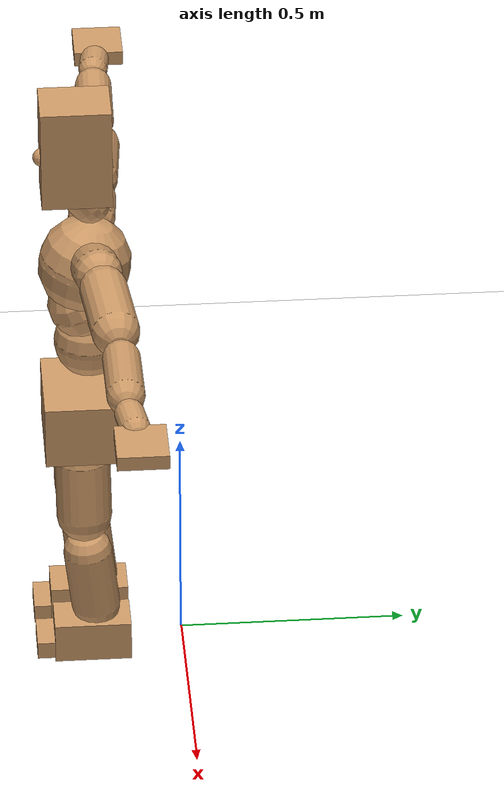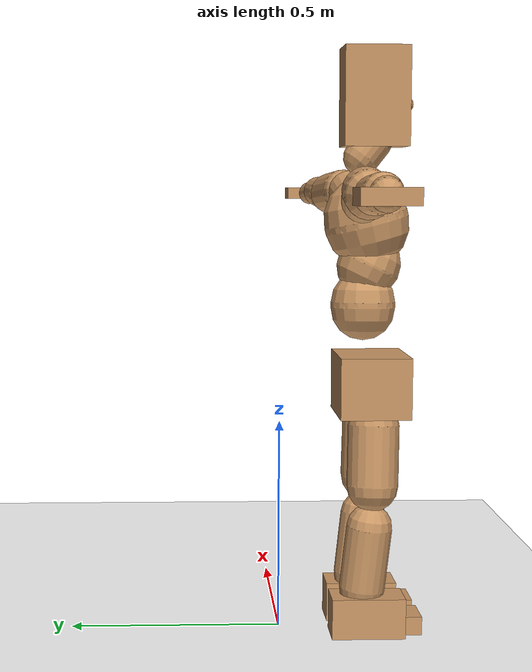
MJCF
<mujoco model="humanoid">
  <option integrator="implicitfast" />

  <visual>
    <global offwidth="1280" offheight="960" />
    <headlight active="1" ambient="0.34 0.34 0.34" diffuse="0.5 0.5 0.5" />
  </visual>

  <default>
    <joint damping="2" stiffness="2" armature="0.01" limited="true" solimplimit="0 .99 .01" />
    <geom condim="1" friction="0.7 0.005 0.0001" solimp=".99 .99 .003" solref="0.015 1" margin="0.001" rgba="0.8 0.6 .4 1" />
    <default class="smplcontact">
      <geom condim="3" friction="1. 0.005 0.0001" solref="0.015 1" solimp="0.98 0.98 0.001" priority="1" />
    </default>
    <default class="stiff_medium">
      <joint stiffness="10" />
    </default>
    <default class="stiff_medium_higher">
      <joint stiffness="50" />
    </default>
    <default class="stiff_high">
      <joint stiffness="100" />
    </default>
  </default>

  <asset>
    <texture type="skybox" builtin="gradient" rgb1="0.99 0.99 0.99" rgb2="0.608 0.828 0.892" width="100" />
    <texture builtin="flat" height="1278" mark="cross" markrgb="1 1 1" name="texgeom" random="0.01" rgb1="0.8 0.6 0.4" rgb2="0.8 0.6 0.4" type="cube" width="127" />
    <texture name="texplane" type="2d" builtin="checker" markrgb="1 1 1" rgb1="0.756 0.772 0.76" rgb2="0.6 0.6 0.6" width="100" height="100" />
    <material name="MatPlane" reflectance="0.5" texture="texplane" texrepeat="1 1" texuniform="true" />
    <material name="geom" texture="texgeom" texuniform="true" />
  </asset>

  <worldbody>
    <light name="tracking_light" pos="0 0 7" dir="0 0 -1" directional="true" cutoff="100" exponent="1" diffuse="1 1 1" specular="0.1 0.1 0.1" mode="trackcom" />
    <camera name="back" pos="0 3 2.4" xyaxes="-1 0 0 0 -1 2" mode="trackcom" />
    <camera name="side" pos="-3 0 2.4" xyaxes="0 -1 0 1 0 2" mode="trackcom" />
    <camera name="front_side" pos="-2.8 -2.8 0.8" xyaxes="0.5 -0.5 0 0.1 0.1 1" mode="trackcom" />
    <geom condim="3" name="floor" pos="0 0 0" rgba="1 1 1 1" size="100 100 .2" type="plane" material="MatPlane" />
    <body name="Pelvis" pos="-0.0018 -0.2233 0.603363" euler="90 0 0">
      <site name="Pelvis" size="0.01" />
      <freejoint name="Pelvis" />
      <geom type="box" pos="-0.0000 -0.0121 -0.0055" size="0.1069 0.0722 0.083" quat="1.0000 0.0000 0.0000 0.0000" density="3165.830099" name="Pelvis" />
      <body name="L_Hip" pos="0.0434375 -0.057125 -0.00425">
        <joint name="L_Hip_x" type="hinge" pos="0 0 0" axis="1 0 0" stiffness="4.687407500000001" range="-160.0 22.92" class="stiff_medium" damping="5.764325230195987" armature="0.003150516248715215"/>
        <joint name="L_Hip_y" type="hinge" pos="0 0 0" axis="0 1 0" stiffness="4.7267779545454545" range="-70.0 70.0" class="stiff_medium" damping="5.2258051596118325" armature="0.005777516910851337"/>
        <joint name="L_Hip_z" type="hinge" pos="0 0 0" axis="0 0 1" stiffness="4.7183838636363635" range="-28.65 90.0" class="stiff_medium" damping="3.852980787733686" armature="0.003146302077085308"/>
        <geom type="capsule" density="2040.816327" fromto="0.0043125 -0.046875 -0.0005625 0.017125 -0.187625 -0.00225" size="0.0615" name="L_Hip" />
        <body name="L_Knee" pos="0.0214375 -0.2345 -0.0028125">
          <joint name="L_Knee_x" type="hinge" pos="0 0 0" axis="1 0 0" range="-5.16 171.89" damping="3.32034463793058" armature="0.003468205500974937" stiffness="0.9933711136363637"/>
          <joint name="L_Knee_y" type="hinge" pos="0 0 0" axis="0 1 0" range="-4.58 6.88" damping="4.394208641781007" armature="0.006327520325715421" stiffness="0.953625422832981"/>
          <joint name="L_Knee_z" type="hinge" pos="0 0 0" axis="0 0 1" range="-6.88 4.58" damping="3.318626119768315" armature="0.0034456063533856774" stiffness="0.9988517071881606"/>
          <geom type="capsule" density="1234.567901" fromto="-0.0016875 -0.04975 -0.0054375 -0.0068125 -0.199 -0.021875" size="0.0541" name="L_Knee" />
          <body name="L_Ankle" pos="-0.0085 -0.24875 -0.0273125">
            <joint name="L_Ankle_x" type="hinge" pos="0 0 0" axis="1 0 0" range="-45.84 45.84" class="stiff_medium" damping="3.6717736084900636" armature="0.005991965080890731" stiffness="6.25"/>
            <joint name="L_Ankle_y" type="hinge" pos="0 0 0" axis="0 1 0" range="-74.48 22.92" class="stiff_medium" damping="1.858589102984691" armature="0.006141072806637225" stiffness="6.25"/>
            <joint name="L_Ankle_z" type="hinge" pos="0 0 0" axis="0 0 1" range="-4.58 4.58" class="stiff_medium" damping="4.001717943795479" armature="0.007117220667419875" stiffness="6.25"/>
            <geom type="box" pos="0.0145625 -0.0149375 0.015125" size="0.0483 0.0464 0.085" quat="1.0000 0.0000 0.0000 0.0000" density="449.071558" name="L_Ankle" class="smplcontact" />
            <body name="L_Toe" pos="0.0165 -0.034875 0.0745625">
              <joint name="L_Toe_x" type="hinge" pos="0 0 0" axis="1 0 0" range="-91.67 22.92" armature="0.007683229914737211" damping="1.3859319891987134" stiffness="1.25"/>
              <joint name="L_Toe_y" type="hinge" pos="0 0 0" axis="0 1 0" range="-4.58 4.58" armature="0.008367648440754674" damping="1.446344395428927" stiffness="1.25"/>
              <joint name="L_Toe_z" type="hinge" pos="0 0 0" axis="0 0 1" range="-4.58 4.58" armature="0.009751505861704394" damping="1.5613700603720115" stiffness="1.25"/>
              <geom type="box" pos="-0.001875 0.0034375 0.0155" size="0.0478 0.02 0.0496" quat="1.0000 0.0000 0.0000 0.0000" density="423.206892" name="L_Toe" class="smplcontact" />
            </body>
          </body>
        </body>
      </body>
      <body name="R_Hip" pos="-0.0423125 -0.0565625 -0.0026875">
        <joint name="R_Hip_x" type="hinge" pos="0 0 0" axis="1 0 0" stiffness="4.687407500000001" range="-160.0 22.92" class="stiff_medium" damping="5.764325230195987" armature="0.003150516248715215"/>
        <joint name="R_Hip_y" type="hinge" pos="0 0 0" axis="0 1 0" stiffness="4.7267779545454545" range="-70.0 70.0" class="stiff_medium" damping="5.2258051596118325" armature="0.005777516910851337"/>
        <joint name="R_Hip_z" type="hinge" pos="0 0 0" axis="0 0 1" stiffness="4.7183838636363635" range="-90.0 28.65" class="stiff_medium" damping="3.852980787733686" armature="0.003146302077085308"/>
        <geom type="capsule" density="2040.816327" fromto="-0.0048125 -0.0478125 -0.001125 -0.019125 -0.191312 -0.0044375" size="0.0606" name="R_Hip" />
        <body name="R_Knee" pos="-0.0239375 -0.239125 -0.0055625">
          <joint name="R_Knee_x" type="hinge" pos="0 0 0" axis="1 0 0" range="-5.16 171.89" damping="3.32034463793058" armature="0.003468205500974937" stiffness="0.9933711136363637"/>
          <joint name="R_Knee_y" type="hinge" pos="0 0 0" axis="0 1 0" range="-6.88 4.58" damping="4.394208641781007" armature="0.006327520325715421" stiffness="0.953625422832981"/>
          <joint name="R_Knee_z" type="hinge" pos="0 0 0" axis="0 0 1" range="-4.58 6.88" damping="3.318626119768315" armature="0.0034456063533856774" stiffness="0.9988517071881606"/>
          <geom type="capsule" density="1234.567901" fromto="0.002 -0.0498125 -0.0053125 0.007875 -0.199187 -0.021125" size="0.0541" name="R_Knee" />
          <body name="R_Ankle" pos="0.009875 -0.249 -0.0264375">
            <joint name="R_Ankle_x" type="hinge" pos="0 0 0" axis="1 0 0" range="-45.84 45.84" class="stiff_medium" damping="3.6717736084900636" armature="0.005991965080890731" stiffness="6.25"/>
            <joint name="R_Ankle_y" type="hinge" pos="0 0 0" axis="0 1 0" range="-22.92 74.48" class="stiff_medium" damping="1.858589102984691" armature="0.006141072806637225" stiffness="6.25"/>
            <joint name="R_Ankle_z" type="hinge" pos="0 0 0" axis="0 0 1" range="-4.58 4.58" class="stiff_medium" damping="4.001717943795479" armature="0.007117220667419875" stiffness="6.25"/>
            <geom type="box" pos="-0.01325 -0.010875 0.016" size="0.0483 0.0478 0.0865" quat="1.0000 0.0000 0.0000 0.0000" density="434.700981" name="R_Ankle" class="smplcontact" />
            <body name="R_Toe" pos="-0.015875 -0.0300625 0.0770625">
              <joint name="R_Toe_x" type="hinge" pos="0 0 0" axis="1 0 0" range="-91.67 22.92" armature="0.007683229914737211" damping="1.3859319891987134" stiffness="1.25"/>
              <joint name="R_Toe_y" type="hinge" pos="0 0 0" axis="0 1 0" range="-4.58 4.58" armature="0.008367648440754674" damping="1.446344395428927" stiffness="1.25"/>
              <joint name="R_Toe_z" type="hinge" pos="0 0 0" axis="0 0 1" range="-4.58 4.58" armature="0.009751505861704394" damping="1.5613700603720115" stiffness="1.25"/>
              <geom type="box" pos="0.002625 0.0028125 0.0141875" size="0.0479 0.0216 0.0493" quat="1.0000 0.0000 0.0000 0.0000" density="407.384095" name="R_Toe" class="smplcontact" />
            </body>
          </body>
        </body>
      </body>
      <body name="Torso" pos="-0.0025 0.109 -0.0267">
        <joint name="Torso_x" type="hinge" pos="0 0 0" axis="1 0 0" range="-25.78 57.3" class="stiff_medium" damping="15.000000000000007" armature="0.010000000000000009" stiffness="10.0"/>
        <joint name="Torso_y" type="hinge" pos="0 0 0" axis="0 1 0" range="-57.3 57.3" class="stiff_high" damping="20.0" armature="0.010000000000000002" stiffness="100.0"/>
        <joint name="Torso_z" type="hinge" pos="0 0 0" axis="0 0 1" range="-34.38 34.38" class="stiff_high" damping="20.000000000000004" armature="0.010000000000000005" stiffness="100.0"/>
        <geom type="capsule" density="2040.816327" fromto="0.0025 0.0608 0.0005 0.003 0.0743 0.0006" size="0.0769" name="Torso" />
        <body name="Spine" pos="0.0055 0.1352 0.0011">
          <joint name="Spine_x" type="hinge" pos="0 0 0" axis="1 0 0" stiffness="10.0" range="-25.78 57.3" class="stiff_medium" damping="15.000000000000014" armature="0.010000000000000021"/>
          <joint name="Spine_y" type="hinge" pos="0 0 0" axis="0 1 0" stiffness="10.0" range="-57.3 57.3" class="stiff_high" damping="8.0" armature="0.01"/>
          <joint name="Spine_z" type="hinge" pos="0 0 0" axis="0 0 1" stiffness="20.0" range="-34.38 34.38" class="stiff_high" damping="12.000000000000004" armature="0.010000000000000007"/>
          <geom type="capsule" density="2040.816327" fromto="0.0007 0.0238 0.0114 0.0008 0.0291 0.014" size="0.0755" name="Spine" />
          <body name="Chest" pos="0.0015 0.0529 0.0254">
            <joint name="Chest_x" type="hinge" pos="0 0 0" axis="1 0 0" stiffness="10.0" range="-25.78 57.3" class="stiff_medium" damping="15.000000000000007" armature="0.010000000000000009"/>
            <joint name="Chest_y" type="hinge" pos="0 0 0" axis="0 1 0" stiffness="10.0" range="-57.3 57.3" class="stiff_high" damping="8.0" armature="0.010000000000000002"/>
            <joint name="Chest_z" type="hinge" pos="0 0 0" axis="0 0 1" stiffness="20.0" range="-34.38 34.38" class="stiff_high" damping="12.0" armature="0.010000000000000002"/>
            <geom type="capsule" density="2040.816327" fromto="-0.0009 0.0682 -0.0173 -0.001 0.0833 -0.0212" size="0.1002" name="Chest" />
            <body name="Neck" pos="-0.0028 0.2139 -0.0429">
              <joint name="Neck_x" type="hinge" pos="0 0 0" axis="1 0 0" range="-28.65 57.3" class="stiff_medium_higher" damping="10.000000000000004" armature="0.010000000000000009" stiffness="50.0"/>
              <joint name="Neck_y" type="hinge" pos="0 0 0" axis="0 1 0" range="-40.11 40.11" class="stiff_medium_higher" damping="10.0" armature="0.01" stiffness="50.0"/>
              <joint name="Neck_z" type="hinge" pos="0 0 0" axis="0 0 1" range="-40.11 40.11" class="stiff_medium_higher" damping="9.999999999999996" armature="0.009999999999999993" stiffness="50.0"/>
              <geom type="capsule" density="1000" fromto="0.001 0.013 0.0103 0.0041 0.052 0.0411" size="0.0436" name="Neck" />
              <body name="Head" pos="0.0052 0.065 0.0513">
                <joint name="Head_x" type="hinge" pos="0 0 0" axis="1 0 0" range="-28.65 57.3" class="stiff_medium_higher" damping="1.9999999999999973" armature="0.009999999999999974" stiffness="50.0"/>
                <joint name="Head_y" type="hinge" pos="0 0 0" axis="0 1 0" range="-40.11 40.11" class="stiff_medium_higher" damping="1.9999999999999998" armature="0.009999999999999998" stiffness="50.0"/>
                <joint name="Head_z" type="hinge" pos="0 0 0" axis="0 0 1" range="-40.11 40.11" class="stiff_medium_higher" damping="1.9999999999999964" armature="0.009999999999999966" stiffness="50.0"/>
                <geom type="box" pos="-0.0042 0.0876 -0.0116" size="0.0606 0.1154 0.076" quat="1.0000 0.0000 0.0000 0.0000" density="1018.069894" name="Head" />
                <geom type="capsule" name="nose" size="0.02 0.01" pos="0 0.07 0.05" quat="1 0 0 0" mass="0" contype="0" conaffinity="0" />
              </body>
            </body>
            <body name="L_Thorax" pos="0.0788 0.1217 -0.0341">
              <joint name="L_Thorax_x" type="hinge" pos="0 0 0" axis="1 0 0" range="-10.89 4.58" class="stiff_medium_higher" damping="20.000000000000014" armature="0.010000000000000014" stiffness="50.0"/>
              <joint name="L_Thorax_y" type="hinge" pos="0 0 0" axis="0 1 0" range="-28.65 17.19" class="stiff_medium_higher" damping="20.0" armature="0.01" stiffness="50.0"/>
              <joint name="L_Thorax_z" type="hinge" pos="0 0 0" axis="0 0 1" range="-31.51 40.11" class="stiff_medium_higher" damping="19.999999999999996" armature="0.009999999999999998" stiffness="50.0"/>
              <geom type="capsule" density="1000" fromto="0.0182 0.0061 -0.0018 0.0728 0.0244 -0.0071" size="0.0521" name="L_Thorax" />
              <body name="L_Shoulder" pos="0.091 0.0305 -0.0089">
                <joint name="L_Shoulder_x" type="hinge" pos="0 0 0" axis="1 0 0" range="-97.4 97.4" class="stiff_medium" damping="6.000000000000073" armature="0.010000000000000245" stiffness="10.0"/>
                <joint name="L_Shoulder_y" type="hinge" pos="0 0 0" axis="0 1 0" range="-108.86 80.21" class="stiff_medium" damping="5.999999999999999" armature="0.009999999999999998" stiffness="10.0"/>
                <joint name="L_Shoulder_z" type="hinge" pos="0 0 0" axis="0 0 1" range="-97.4 85.94" class="stiff_medium" damping="6.000000000000002" armature="0.010000000000000005" stiffness="10.0"/>
                <geom type="capsule" density="1000" fromto="0.0519 -0.0026 -0.0055 0.2077 -0.0102 -0.022" size="0.0517" name="L_Shoulder" />
                <body name="L_Elbow" pos="0.2596 -0.0128 -0.0275">
                  <joint name="L_Elbow_x" type="hinge" pos="0 0 0" axis="1 0 0" range="-17.19 4.58" damping="4.999999999999972" armature="0.009999999999999886" stiffness="2.0"/>
                  <joint name="L_Elbow_y" type="hinge" pos="0 0 0" axis="0 1 0" range="-180.0 17.19" damping="5.000000000000004" armature="0.010000000000000018" stiffness="2.0"/>
                  <joint name="L_Elbow_z" type="hinge" pos="0 0 0" axis="0 0 1" range="-100.84 4.58" damping="5.0000000000000036" armature="0.010000000000000014" stiffness="2.0"/>
                  <geom type="capsule" density="1000" fromto="0.0498 0.0018 -0.0002 0.1994 0.0072 -0.0009" size="0.0405" name="L_Elbow" />
                  <body name="L_Wrist" pos="0.2492 0.009 -0.0012">
                    <joint name="L_Wrist_x" type="hinge" pos="0 0 0" axis="1 0 0" range="-180.0 22.92" armature="0.009999999999999492" damping="1.9999999999999492" stiffness="2.0"/>
                    <joint name="L_Wrist_y" type="hinge" pos="0 0 0" axis="0 1 0" range="-17.19 17.19" armature="0.010000000000000031" damping="2.000000000000003" stiffness="2.0"/>
                    <joint name="L_Wrist_z" type="hinge" pos="0 0 0" axis="0 0 1" range="-22.92 22.92" armature="0.009999999999999934" damping="1.9999999999999933" stiffness="2.0"/>
                    <geom type="capsule" density="1000" fromto="0.0168 -0.0016 -0.003 0.0672 -0.0065 -0.012" size="0.0318" name="L_Wrist" class="smplcontact" />
                    <body name="L_Hand" pos="0.084 -0.0082 -0.0149">
                      <joint name="L_Hand_x" type="hinge" pos="0 0 0" axis="1 0 0" range="-17.19 17.19" armature="0.009999999999999908" damping="1.9999999999999907" stiffness="2.0"/>
                      <joint name="L_Hand_y" type="hinge" pos="0 0 0" axis="0 1 0" range="-51.57 51.57" armature="0.010000000000000328" damping="2.000000000000033" stiffness="2.0"/>
                      <joint name="L_Hand_z" type="hinge" pos="0 0 0" axis="0 0 1" range="-91.67 91.67" armature="0.010000000000000168" damping="2.000000000000017" stiffness="2.0"/>
                      <geom type="box" pos="0.0493 0.001 -0.0058" size="0.0585 0.0158 0.0538" quat="1.0000 0.0000 0.0000 0.0000" density="400.552564" name="L_Hand" class="smplcontact" />
                    </body>
                  </body>
                </body>
              </body>
            </body>
            <body name="R_Thorax" pos="-0.0818 0.1188 -0.0386">
              <joint name="R_Thorax_x" type="hinge" pos="0 0 0" axis="1 0 0" range="-10.89 4.58" class="stiff_medium_higher" damping="20.000000000000014" armature="0.010000000000000014" stiffness="50.0"/>
              <joint name="R_Thorax_y" type="hinge" pos="0 0 0" axis="0 1 0" range="-17.19 28.65" class="stiff_medium_higher" damping="20.0" armature="0.01" stiffness="50.0"/>
              <joint name="R_Thorax_z" type="hinge" pos="0 0 0" axis="0 0 1" range="-40.11 31.51" class="stiff_medium_higher" damping="19.999999999999996" armature="0.009999999999999998" stiffness="50.0"/>
              <geom type="capsule" density="1000" fromto="-0.0192 0.0065 -0.0018 -0.0768 0.026 -0.0073" size="0.0511" name="R_Thorax" />
              <body name="R_Shoulder" pos="-0.096 0.0326 -0.0091">
                <joint name="R_Shoulder_x" type="hinge" pos="0 0 0" axis="1 0 0" range="-97.4 97.4" class="stiff_medium" damping="6.000000000000073" armature="0.010000000000000245" stiffness="10.0"/>
                <joint name="R_Shoulder_y" type="hinge" pos="0 0 0" axis="0 1 0" range="-80.21 108.86" class="stiff_medium" damping="5.999999999999999" armature="0.009999999999999998" stiffness="10.0"/>
                <joint name="R_Shoulder_z" type="hinge" pos="0 0 0" axis="0 0 1" range="-85.94 97.4" class="stiff_medium" damping="6.000000000000002" armature="0.010000000000000005" stiffness="10.0"/>
                <geom type="capsule" density="1000" fromto="-0.0507 -0.0027 -0.0043 -0.203 -0.0107 -0.0171" size="0.0531" name="R_Shoulder" />
                <body name="R_Elbow" pos="-0.2537 -0.0133 -0.0214">
                  <joint name="R_Elbow_x" type="hinge" pos="0 0 0" axis="1 0 0" range="-17.19 4.58" damping="4.999999999999972" armature="0.009999999999999886" stiffness="2.0"/>
                  <joint name="R_Elbow_y" type="hinge" pos="0 0 0" axis="0 1 0" range="-17.19 180.0" damping="5.000000000000004" armature="0.010000000000000018" stiffness="2.0"/>
                  <joint name="R_Elbow_z" type="hinge" pos="0 0 0" axis="0 0 1" range="-4.58 100.84" damping="5.0000000000000036" armature="0.010000000000000014" stiffness="2.0"/>
                  <geom type="capsule" density="1000" fromto="-0.0511 0.0016 -0.0011 -0.2042 0.0062 -0.0044" size="0.0408" name="R_Elbow" />
                  <body name="R_Wrist" pos="-0.2553 0.0078 -0.0056">
                    <joint name="R_Wrist_x" type="hinge" pos="0 0 0" axis="1 0 0" range="-180.0 22.92" armature="0.009999999999999492" damping="1.9999999999999492" stiffness="2.0"/>
                    <joint name="R_Wrist_y" type="hinge" pos="0 0 0" axis="0 1 0" range="-17.19 17.19" armature="0.010000000000000031" damping="2.000000000000003" stiffness="2.0"/>
                    <joint name="R_Wrist_z" type="hinge" pos="0 0 0" axis="0 0 1" range="-22.92 22.92" armature="0.009999999999999934" damping="1.9999999999999933" stiffness="2.0"/>
                    <geom type="capsule" density="1000" fromto="-0.0169 -0.0012 -0.0021 -0.0677 -0.0049 -0.0083" size="0.0326" name="R_Wrist" class="smplcontact" />
                    <body name="R_Hand" pos="-0.0846 -0.0061 -0.0103">
                      <joint name="R_Hand_x" type="hinge" pos="0 0 0" axis="1 0 0" range="-17.19 17.19" armature="0.009999999999999908" damping="1.9999999999999907" stiffness="2.0"/>
                      <joint name="R_Hand_y" type="hinge" pos="0 0 0" axis="0 1 0" range="-51.57 51.57" armature="0.010000000000000328" damping="2.000000000000033" stiffness="2.0"/>
                      <joint name="R_Hand_z" type="hinge" pos="0 0 0" axis="0 0 1" range="-91.67 91.67" armature="0.010000000000000168" damping="2.000000000000017" stiffness="2.0"/>
                      <geom type="box" pos="-0.0462 -0.0009 -0.0079" size="0.0569 0.0164 0.0546" quat="1.0000 0.0000 0.0000 0.0000" density="403.679611" name="R_Hand" class="smplcontact" />
                    </body>
                  </body>
                </body>
              </body>
            </body>
          </body>
        </body>
      </body>
    </body>
  </worldbody>
  <actuator>
    <general name="L_Hip_x" joint="L_Hip_x" biastype="affine" gainprm="134.68330974252703" biasprm="-100.93148971958017 -84.37333500000001 -0.768576697359465" ctrllimited="true" ctrlrange="-1 1" forcerange="-168.74667000000002 168.74667000000002" />
    <general name="L_Hip_y" joint="L_Hip_y" biastype="affine" gainprm="103.94727628005133" biasprm="0.0 -85.08200318181818 -1.0451610319223665" ctrllimited="true" ctrlrange="-1 1" forcerange="-170.16400636363636 170.16400636363636" />
    <general name="L_Hip_z" joint="L_Hip_z" biastype="affine" gainprm="87.93887179130964" biasprm="45.470288954039994 -84.93090954545455 -0.7705961575467372" ctrllimited="true" ctrlrange="-1 1" forcerange="-169.8618190909091 169.8618190909091" />
    <general name="L_Knee_x" joint="L_Knee_x" biastype="affine" gainprm="138.1329667277189" biasprm="130.08138685406703 -89.40340022727273 -0.830086159482645" ctrllimited="true" ctrlrange="-1 1" forcerange="-178.80680045454545 178.80680045454545" />
    <general name="L_Knee_y" joint="L_Knee_y" biastype="affine" gainprm="8.583261013888105" biasprm="1.7226440080229182 -85.82628805496829 -1.0985521604452517" ctrllimited="true" ctrlrange="-1 1" forcerange="-171.65257610993658 171.65257610993658" />
    <general name="L_Knee_z" joint="L_Knee_z" biastype="affine" gainprm="8.990327555964573" biasprm="-1.8043414815635705 -89.89665364693445 -0.8296565299420787" ctrllimited="true" ctrlrange="-1 1" forcerange="-179.7933072938689 179.7933072938689" />
    <general name="L_Ankle_x" joint="L_Ankle_x" biastype="affine" gainprm="45.003314762673796" biasprm="0.0 -56.25 -1.2239245361633546" ctrllimited="true" ctrlrange="-1 1" forcerange="-112.5 112.5" />
    <general name="L_Ankle_y" joint="L_Ankle_y" biastype="affine" gainprm="47.811113196819676" biasprm="-25.309455815482774 -56.25 -1.239059401989794" ctrllimited="true" ctrlrange="-1 1" forcerange="-112.5 112.5" />
    <general name="L_Ankle_z" joint="L_Ankle_z" biastype="affine" gainprm="4.496404485450391" biasprm="0.0 -56.25 -1.3339059812651597" ctrllimited="true" ctrlrange="-1 1" forcerange="-112.5 112.5" />
    <general name="L_Toe_x" joint="L_Toe_x" biastype="affine" gainprm="44.999387771856796" biasprm="-26.998061866787282 -45.0 -0.5543727956794854" ctrllimited="true" ctrlrange="-1 1" forcerange="-90.0 90.0" />
    <general name="L_Toe_y" joint="L_Toe_y" biastype="affine" gainprm="3.597123588360313" biasprm="0.0 -45.0 -0.5785377581715708" ctrllimited="true" ctrlrange="-1 1" forcerange="-90.0 90.0" />
    <general name="L_Toe_z" joint="L_Toe_z" biastype="affine" gainprm="3.597123588360313" biasprm="0.0 -45.0 -0.6245480241488046" ctrllimited="true" ctrlrange="-1 1" forcerange="-90.0 90.0" />
    <general name="R_Hip_x" joint="R_Hip_x" biastype="affine" gainprm="134.68330974252703" biasprm="-100.93148971958017 -84.37333500000001 -0.768576697359465" ctrllimited="true" ctrlrange="-1 1" forcerange="-168.74667000000002 168.74667000000002" />
    <general name="R_Hip_y" joint="R_Hip_y" biastype="affine" gainprm="103.94727628005133" biasprm="0.0 -85.08200318181818 -1.0451610319223665" ctrllimited="true" ctrlrange="-1 1" forcerange="-170.16400636363636 170.16400636363636" />
    <general name="R_Hip_z" joint="R_Hip_z" biastype="affine" gainprm="87.93887179130964" biasprm="-45.470288954039994 -84.93090954545455 -0.7705961575467372" ctrllimited="true" ctrlrange="-1 1" forcerange="-169.8618190909091 169.8618190909091" />
    <general name="R_Knee_x" joint="R_Knee_x" biastype="affine" gainprm="138.1329667277189" biasprm="130.08138685406703 -89.40340022727273 -0.830086159482645" ctrllimited="true" ctrlrange="-1 1" forcerange="-178.80680045454545 178.80680045454545" />
    <general name="R_Knee_y" joint="R_Knee_y" biastype="affine" gainprm="8.583261013888105" biasprm="-1.7226440080229182 -85.82628805496829 -1.0985521604452517" ctrllimited="true" ctrlrange="-1 1" forcerange="-171.65257610993658 171.65257610993658" />
    <general name="R_Knee_z" joint="R_Knee_z" biastype="affine" gainprm="8.990327555964573" biasprm="1.8043414815635705 -89.89665364693445 -0.8296565299420787" ctrllimited="true" ctrlrange="-1 1" forcerange="-179.7933072938689 179.7933072938689" />
    <general name="R_Ankle_x" joint="R_Ankle_x" biastype="affine" gainprm="45.003314762673796" biasprm="0.0 -56.25 -1.2239245361633546" ctrllimited="true" ctrlrange="-1 1" forcerange="-112.5 112.5" />
    <general name="R_Ankle_y" joint="R_Ankle_y" biastype="affine" gainprm="47.811113196819676" biasprm="25.309455815482774 -56.25 -1.239059401989794" ctrllimited="true" ctrlrange="-1 1" forcerange="-112.5 112.5" />
    <general name="R_Ankle_z" joint="R_Ankle_z" biastype="affine" gainprm="4.496404485450391" biasprm="0.0 -56.25 -1.3339059812651597" ctrllimited="true" ctrlrange="-1 1" forcerange="-112.5 112.5" />
    <general name="R_Toe_x" joint="R_Toe_x" biastype="affine" gainprm="44.999387771856796" biasprm="-26.998061866787282 -45.0 -0.5543727956794854" ctrllimited="true" ctrlrange="-1 1" forcerange="-90.0 90.0" />
    <general name="R_Toe_y" joint="R_Toe_y" biastype="affine" gainprm="3.597123588360313" biasprm="0.0 -45.0 -0.5785377581715708" ctrllimited="true" ctrlrange="-1 1" forcerange="-90.0 90.0" />
    <general name="R_Toe_z" joint="R_Toe_z" biastype="affine" gainprm="3.597123588360313" biasprm="0.0 -45.0 -0.6245480241488046" ctrllimited="true" ctrlrange="-1 1" forcerange="-90.0 90.0" />
    <general name="Torso_x" joint="Torso_x" biastype="affine" gainprm="174.00234510682668" biasprm="66.0153336274335 -240.0 -4.000000000000002" ctrllimited="true" ctrlrange="-1 1" forcerange="-360.0 360.0" />
    <general name="Torso_y" joint="Torso_y" biastype="affine" gainprm="240.0176787342602" biasprm="0.0 -240.0 -4.0" ctrllimited="true" ctrlrange="-1 1" forcerange="-360.0 360.0" />
    <general name="Torso_z" joint="Torso_z" biastype="affine" gainprm="144.01060724055614" biasprm="0.0 -240.0 -4.000000000000001" ctrllimited="true" ctrlrange="-1 1" forcerange="-360.0 360.0" />
    <general name="Spine_x" joint="Spine_x" biastype="affine" gainprm="174.00234510682668" biasprm="66.0153336274335 -240.0 -4.0000000000000036" ctrllimited="true" ctrlrange="-1 1" forcerange="-360.0 360.0" />
    <general name="Spine_y" joint="Spine_y" biastype="affine" gainprm="240.0176787342602" biasprm="0.0 -240.0 -4.0" ctrllimited="true" ctrlrange="-1 1" forcerange="-360.0 360.0" />
    <general name="Spine_z" joint="Spine_z" biastype="affine" gainprm="144.01060724055614" biasprm="0.0 -240.0 -4.000000000000001" ctrllimited="true" ctrlrange="-1 1" forcerange="-360.0 360.0" />
    <general name="Chest_x" joint="Chest_x" biastype="affine" gainprm="174.00234510682668" biasprm="66.0153336274335 -240.0 -4.000000000000002" ctrllimited="true" ctrlrange="-1 1" forcerange="-360.0 360.0" />
    <general name="Chest_y" joint="Chest_y" biastype="affine" gainprm="240.0176787342602" biasprm="0.0 -240.0 -4.0" ctrllimited="true" ctrlrange="-1 1" forcerange="-360.0 360.0" />
    <general name="Chest_z" joint="Chest_z" biastype="affine" gainprm="144.01060724055614" biasprm="0.0 -240.0 -4.0" ctrllimited="true" ctrlrange="-1 1" forcerange="-360.0 360.0" />
    <general name="Neck_x" joint="Neck_x" biastype="affine" gainprm="27.00198885760427" biasprm="9.000662952534757 -36.0 -0.8000000000000004" ctrllimited="true" ctrlrange="-1 1" forcerange="-72.0 72.0" />
    <general name="Neck_y" joint="Neck_y" biastype="affine" gainprm="25.20185626709732" biasprm="0.0 -36.0 -0.8" ctrllimited="true" ctrlrange="-1 1" forcerange="-72.0 72.0" />
    <general name="Neck_z" joint="Neck_z" biastype="affine" gainprm="25.20185626709732" biasprm="0.0 -36.0 -0.7999999999999998" ctrllimited="true" ctrlrange="-1 1" forcerange="-72.0 72.0" />
    <general name="Head_x" joint="Head_x" biastype="affine" gainprm="18.001325905069514" biasprm="6.000441968356505 -24.0 -0.7999999999999989" ctrllimited="true" ctrlrange="-1 1" forcerange="-48.0 48.0" />
    <general name="Head_y" joint="Head_y" biastype="affine" gainprm="16.801237511398213" biasprm="0.0 -24.0 -0.7999999999999999" ctrllimited="true" ctrlrange="-1 1" forcerange="-48.0 48.0" />
    <general name="Head_z" joint="Head_z" biastype="affine" gainprm="16.801237511398213" biasprm="0.0 -24.0 -0.7999999999999986" ctrllimited="true" ctrlrange="-1 1" forcerange="-48.0 48.0" />
    <general name="L_Thorax_x" joint="L_Thorax_x" biastype="affine" gainprm="16.200146117011364" biasprm="-6.6078165480505335 -120.0 -1.6000000000000012" ctrllimited="true" ctrlrange="-1 1" forcerange="-240.0 240.0" />
    <general name="L_Thorax_y" joint="L_Thorax_y" biastype="affine" gainprm="48.00353574685204" biasprm="-12.00088393671301 -120.0 -1.6" ctrllimited="true" ctrlrange="-1 1" forcerange="-240.0 240.0" />
    <general name="L_Thorax_z" joint="L_Thorax_z" biastype="affine" gainprm="75.00028861670033" biasprm="9.00589894029074 -120.0 -1.5999999999999999" ctrllimited="true" ctrlrange="-1 1" forcerange="-240.0 240.0" />
    <general name="L_Shoulder_x" joint="L_Shoulder_x" biastype="affine" gainprm="81.5976331892389" biasprm="0.0 -48.0 -1.6000000000000196" ctrllimited="true" ctrlrange="-1 1" forcerange="-96.0 96.0" />
    <general name="L_Shoulder_y" joint="L_Shoulder_y" biastype="affine" gainprm="79.19745640189629" biasprm="-12.00088393671301 -48.0 -1.5999999999999999" ctrllimited="true" ctrlrange="-1 1" forcerange="-96.0 96.0" />
    <general name="L_Shoulder_z" joint="L_Shoulder_z" biastype="affine" gainprm="76.79727961455369" biasprm="-4.800353574685214 -48.0 -1.6000000000000005" ctrllimited="true" ctrlrange="-1 1" forcerange="-96.0 96.0" />
    <general name="L_Elbow_x" joint="L_Elbow_x" biastype="affine" gainprm="13.67849441372996" biasprm="-7.923096672353461 -72.0 -0.7999999999999954" ctrllimited="true" ctrlrange="-1 1" forcerange="-144.0 144.0" />
    <general name="L_Elbow_y" joint="L_Elbow_y" biastype="affine" gainprm="123.89813107227425" biasprm="-102.29653998619085 -72.0 -0.8000000000000007" ctrllimited="true" ctrlrange="-1 1" forcerange="-144.0 144.0" />
    <general name="L_Elbow_z" joint="L_Elbow_z" biastype="affine" gainprm="66.23733950828719" biasprm="-60.4819417669107 -72.0 -0.8000000000000006" ctrllimited="true" ctrlrange="-1 1" forcerange="-144.0 144.0" />
    <general name="L_Wrist_x" joint="L_Wrist_x" biastype="affine" gainprm="21.24973270888136" biasprm="-16.449379134196157 -12.0 -0.7999999999999797" ctrllimited="true" ctrlrange="-1 1" forcerange="-24.0 24.0" />
    <general name="L_Wrist_y" joint="L_Wrist_y" biastype="affine" gainprm="3.6002651810139037" biasprm="0.0 -12.0 -0.8000000000000013" ctrllimited="true" ctrlrange="-1 1" forcerange="-24.0 24.0" />
    <general name="L_Wrist_z" joint="L_Wrist_z" biastype="affine" gainprm="4.800353574685205" biasprm="0.0 -12.0 -0.7999999999999974" ctrllimited="true" ctrlrange="-1 1" forcerange="-24.0 24.0" />
    <general name="L_Hand_x" joint="L_Hand_x" biastype="affine" gainprm="3.6002651810139037" biasprm="0.0 -12.0 -0.7999999999999963" ctrllimited="true" ctrlrange="-1 1" forcerange="-24.0 24.0" />
    <general name="L_Hand_y" joint="L_Hand_y" biastype="affine" gainprm="10.800795543041708" biasprm="0.0 -12.0 -0.8000000000000131" ctrllimited="true" ctrlrange="-1 1" forcerange="-24.0 24.0" />
    <general name="L_Hand_z" joint="L_Hand_z" biastype="affine" gainprm="19.199319903638422" biasprm="0.0 -12.0 -0.8000000000000068" ctrllimited="true" ctrlrange="-1 1" forcerange="-24.0 24.0" />
    <general name="R_Thorax_x" joint="R_Thorax_x" biastype="affine" gainprm="16.200146117011364" biasprm="-6.6078165480505335 -120.0 -1.6000000000000012" ctrllimited="true" ctrlrange="-1 1" forcerange="-240.0 240.0" />
    <general name="R_Thorax_y" joint="R_Thorax_y" biastype="affine" gainprm="48.00353574685204" biasprm="12.000883936713002 -120.0 -1.6" ctrllimited="true" ctrlrange="-1 1" forcerange="-240.0 240.0" />
    <general name="R_Thorax_z" joint="R_Thorax_z" biastype="affine" gainprm="75.00028861670033" biasprm="-9.00589894029074 -120.0 -1.5999999999999999" ctrllimited="true" ctrlrange="-1 1" forcerange="-240.0 240.0" />
    <general name="R_Shoulder_x" joint="R_Shoulder_x" biastype="affine" gainprm="81.5976331892389" biasprm="0.0 -48.0 -1.6000000000000196" ctrllimited="true" ctrlrange="-1 1" forcerange="-96.0 96.0" />
    <general name="R_Shoulder_y" joint="R_Shoulder_y" biastype="affine" gainprm="79.19745640189629" biasprm="12.00088393671301 -48.0 -1.5999999999999999" ctrllimited="true" ctrlrange="-1 1" forcerange="-96.0 96.0" />
    <general name="R_Shoulder_z" joint="R_Shoulder_z" biastype="affine" gainprm="76.79727961455369" biasprm="4.800353574685204 -48.0 -1.6000000000000005" ctrllimited="true" ctrlrange="-1 1" forcerange="-96.0 96.0" />
    <general name="R_Elbow_x" joint="R_Elbow_x" biastype="affine" gainprm="13.67849441372996" biasprm="-7.923096672353461 -72.0 -0.7999999999999954" ctrllimited="true" ctrlrange="-1 1" forcerange="-144.0 144.0" />
    <general name="R_Elbow_y" joint="R_Elbow_y" biastype="affine" gainprm="123.89813107227425" biasprm="102.29653998619085 -72.0 -0.8000000000000007" ctrllimited="true" ctrlrange="-1 1" forcerange="-144.0 144.0" />
    <general name="R_Elbow_z" joint="R_Elbow_z" biastype="affine" gainprm="66.23733950828719" biasprm="60.481941766910694 -72.0 -0.8000000000000006" ctrllimited="true" ctrlrange="-1 1" forcerange="-144.0 144.0" />
    <general name="R_Wrist_x" joint="R_Wrist_x" biastype="affine" gainprm="21.24973270888136" biasprm="-16.449379134196157 -12.0 -0.7999999999999797" ctrllimited="true" ctrlrange="-1 1" forcerange="-24.0 24.0" />
    <general name="R_Wrist_y" joint="R_Wrist_y" biastype="affine" gainprm="3.6002651810139037" biasprm="0.0 -12.0 -0.8000000000000013" ctrllimited="true" ctrlrange="-1 1" forcerange="-24.0 24.0" />
    <general name="R_Wrist_z" joint="R_Wrist_z" biastype="affine" gainprm="4.800353574685205" biasprm="0.0 -12.0 -0.7999999999999974" ctrllimited="true" ctrlrange="-1 1" forcerange="-24.0 24.0" />
    <general name="R_Hand_x" joint="R_Hand_x" biastype="affine" gainprm="3.6002651810139037" biasprm="0.0 -12.0 -0.7999999999999963" ctrllimited="true" ctrlrange="-1 1" forcerange="-24.0 24.0" />
    <general name="R_Hand_y" joint="R_Hand_y" biastype="affine" gainprm="10.800795543041708" biasprm="0.0 -12.0 -0.8000000000000131" ctrllimited="true" ctrlrange="-1 1" forcerange="-24.0 24.0" />
    <general name="R_Hand_z" joint="R_Hand_z" biastype="affine" gainprm="19.199319903638422" biasprm="0.0 -12.0 -0.8000000000000068" ctrllimited="true" ctrlrange="-1 1" forcerange="-24.0 24.0" />
  </actuator>
  <contact>
    <exclude body1="Torso" body2="Chest" />
    <exclude body1="Head" body2="Chest" />
    <exclude body1="R_Knee" body2="R_Toe" />
    <exclude body1="R_Knee" body2="L_Ankle" />
    <exclude body1="R_Knee" body2="L_Toe" />
    <exclude body1="L_Knee" body2="L_Toe" />
    <exclude body1="L_Knee" body2="R_Ankle" />
    <exclude body1="L_Knee" body2="R_Toe" />
    <exclude body1="L_Shoulder" body2="Chest" />
    <exclude body1="R_Shoulder" body2="Chest" />
  </contact>
  <sensor>
    <framelinvel name="sensor_Pelvis_framelinvel" objtype="xbody" objname="Pelvis" />
    <framelinvel name="sensor_L_Hip_framelinvel" objtype="xbody" objname="L_Hip" />
    <framelinvel name="sensor_L_Knee_framelinvel" objtype="xbody" objname="L_Knee" />
    <framelinvel name="sensor_L_Ankle_framelinvel" objtype="xbody" objname="L_Ankle" />
    <framelinvel name="sensor_L_Toe_framelinvel" objtype="xbody" objname="L_Toe" />
    <framelinvel name="sensor_R_Hip_framelinvel" objtype="xbody" objname="R_Hip" />
    <framelinvel name="sensor_R_Knee_framelinvel" objtype="xbody" objname="R_Knee" />
    <framelinvel name="sensor_R_Ankle_framelinvel" objtype="xbody" objname="R_Ankle" />
    <framelinvel name="sensor_R_Toe_framelinvel" objtype="xbody" objname="R_Toe" />
    <framelinvel name="sensor_Torso_framelinvel" objtype="xbody" objname="Torso" />
    <framelinvel name="sensor_Spine_framelinvel" objtype="xbody" objname="Spine" />
    <framelinvel name="sensor_Chest_framelinvel" objtype="xbody" objname="Chest" />
    <framelinvel name="sensor_Neck_framelinvel" objtype="xbody" objname="Neck" />
    <framelinvel name="sensor_Head_framelinvel" objtype="xbody" objname="Head" />
    <framelinvel name="sensor_L_Thorax_framelinvel" objtype="xbody" objname="L_Thorax" />
    <framelinvel name="sensor_L_Shoulder_framelinvel" objtype="xbody" objname="L_Shoulder" />
    <framelinvel name="sensor_L_Elbow_framelinvel" objtype="xbody" objname="L_Elbow" />
    <framelinvel name="sensor_L_Wrist_framelinvel" objtype="xbody" objname="L_Wrist" />
    <framelinvel name="sensor_L_Hand_framelinvel" objtype="xbody" objname="L_Hand" />
    <framelinvel name="sensor_R_Thorax_framelinvel" objtype="xbody" objname="R_Thorax" />
    <framelinvel name="sensor_R_Shoulder_framelinvel" objtype="xbody" objname="R_Shoulder" />
    <framelinvel name="sensor_R_Elbow_framelinvel" objtype="xbody" objname="R_Elbow" />
    <framelinvel name="sensor_R_Wrist_framelinvel" objtype="xbody" objname="R_Wrist" />
    <framelinvel name="sensor_R_Hand_framelinvel" objtype="xbody" objname="R_Hand" />
    <frameangvel name="sensor_Pelvis_frameangvel" objtype="xbody" objname="Pelvis" />
    <frameangvel name="sensor_L_Hip_frameangvel" objtype="xbody" objname="L_Hip" />
    <frameangvel name="sensor_L_Knee_frameangvel" objtype="xbody" objname="L_Knee" />
    <frameangvel name="sensor_L_Ankle_frameangvel" objtype="xbody" objname="L_Ankle" />
    <frameangvel name="sensor_L_Toe_frameangvel" objtype="xbody" objname="L_Toe" />
    <frameangvel name="sensor_R_Hip_frameangvel" objtype="xbody" objname="R_Hip" />
    <frameangvel name="sensor_R_Knee_frameangvel" objtype="xbody" objname="R_Knee" />
    <frameangvel name="sensor_R_Ankle_frameangvel" objtype="xbody" objname="R_Ankle" />
    <frameangvel name="sensor_R_Toe_frameangvel" objtype="xbody" objname="R_Toe" />
    <frameangvel name="sensor_Torso_frameangvel" objtype="xbody" objname="Torso" />
    <frameangvel name="sensor_Spine_frameangvel" objtype="xbody" objname="Spine" />
    <frameangvel name="sensor_Chest_frameangvel" objtype="xbody" objname="Chest" />
    <frameangvel name="sensor_Neck_frameangvel" objtype="xbody" objname="Neck" />
    <frameangvel name="sensor_Head_frameangvel" objtype="xbody" objname="Head" />
    <frameangvel name="sensor_L_Thorax_frameangvel" objtype="xbody" objname="L_Thorax" />
    <frameangvel name="sensor_L_Shoulder_frameangvel" objtype="xbody" objname="L_Shoulder" />
    <frameangvel name="sensor_L_Elbow_frameangvel" objtype="xbody" objname="L_Elbow" />
    <frameangvel name="sensor_L_Wrist_frameangvel" objtype="xbody" objname="L_Wrist" />
    <frameangvel name="sensor_L_Hand_frameangvel" objtype="xbody" objname="L_Hand" />
    <frameangvel name="sensor_R_Thorax_frameangvel" objtype="xbody" objname="R_Thorax" />
    <frameangvel name="sensor_R_Shoulder_frameangvel" objtype="xbody" objname="R_Shoulder" />
    <frameangvel name="sensor_R_Elbow_frameangvel" objtype="xbody" objname="R_Elbow" />
    <frameangvel name="sensor_R_Wrist_frameangvel" objtype="xbody" objname="R_Wrist" />
    <frameangvel name="sensor_R_Hand_frameangvel" objtype="xbody" objname="R_Hand" />
    <subtreelinvel name="Chest_subtreelinvel" body="Chest" />
    <gyro name="Pelvis_gyro" site="Pelvis" />
  </sensor>
</mujoco>
